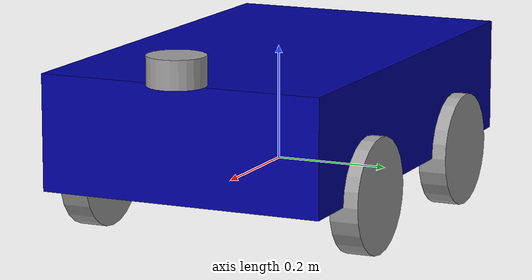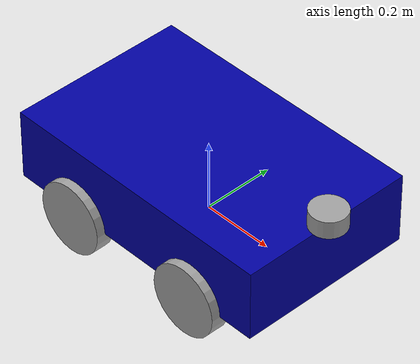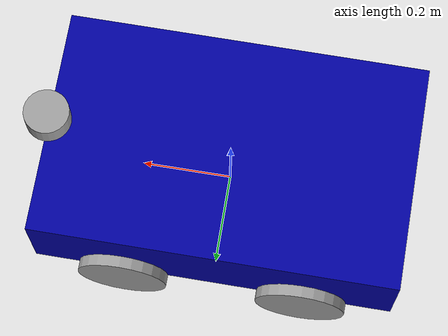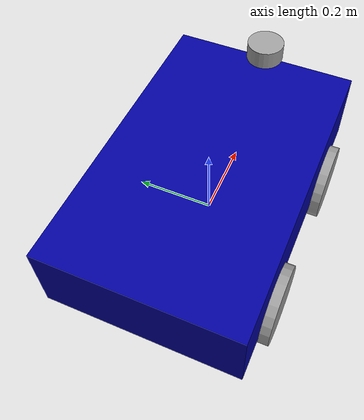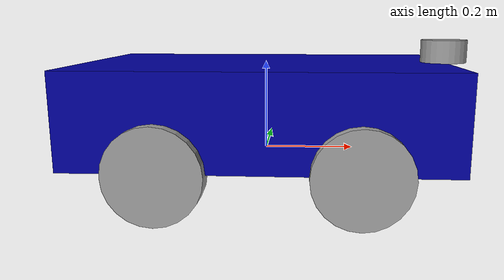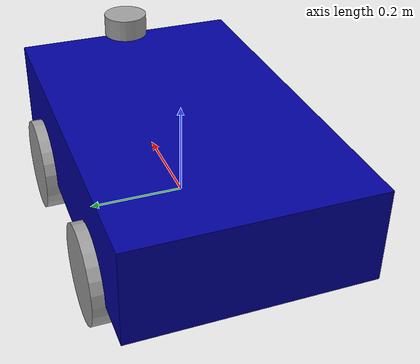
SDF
<sdf version='1.11'>
  <model name='my_robot'>
    <link name='base_link'>
      <inertial>
        <pose>0.066666666666666666 0 0.1333333333333333 0 0 0</pose>
        <mass>6</mass>
        <inertia>
          <ixx>0.16083333333333341</ixx>
          <ixy>0</ixy>
          <ixz>-0.066666666666666693</ixz>
          <iyy>0.45666666666666678</iyy>
          <iyz>0</iyz>
          <izz>0.51083333333333347</izz>
        </inertia>
      </inertial>
      <collision name='base_link_collision'>
        <pose>0 0 0.10000000000000001 0 0 0</pose>
        <geometry>
          <box>
            <size>0.80000000000000004 0.5 0.20000000000000001</size>
          </box>
        </geometry>
      </collision>
      <collision name='base_link_fixed_joint_lump__second_link_collision_1'>
        <pose>0.40000000000000002 0 0.29999999999999999 0 0 0</pose>
        <geometry>
          <box>
            <size>0.20000000000000001 0.20000000000000001 0.20000000000000001</size>
          </box>
        </geometry>
      </collision>
      <visual name='base_link_visual'>
        <pose>0 0 0.10000000000000001 0 0 0</pose>
        <geometry>
          <box>
            <size>0.80000000000000004 0.5 0.20000000000000001</size>
          </box>
        </geometry>
        <material>
          <diffuse>0 0 0.625 1</diffuse>
          <ambient>0 0 0.625 1</ambient>
        </material>
      </visual>
      <visual name='base_link_fixed_joint_lump__second_link_visual_1'>
        <pose>0.40000000000000002 0 0.22500000000000001 0 0 0</pose>
        <geometry>
          <cylinder>
            <length>0.050000000000000003</length>
            <radius>0.050000000000000003</radius>
          </cylinder>
        </geometry>
        <material>
          <diffuse>0.625 0.625 0.625 1</diffuse>
          <ambient>0.625 0.625 0.625 1</ambient>
        </material>
      </visual>
    </link>
    <joint name='base_left_front_wheel_joint' type='revolute'>
      <pose relative_to='base_link'>0.20000000000000001 0.25 0 0 0 0</pose>
      <parent>base_link</parent>
      <child>left_front_wheel_link</child>
      <axis>
        <xyz>0 1 0</xyz>
        <limit>
          <lower>-inf</lower>
          <upper>inf</upper>
        </limit>
        <dynamics>
          <spring_reference>0</spring_reference>
          <spring_stiffness>0</spring_stiffness>
        </dynamics>
      </axis>
    </joint>
    <link name='left_front_wheel_link'>
      <pose relative_to='base_left_front_wheel_joint'>0 0 0 0 0 0</pose>
      <inertial>
        <pose>0 0 0 1.5707963267948959 0 0</pose>
        <mass>1</mass>
        <inertia>
          <ixx>0.0027083333333333339</ixx>
          <ixy>0</ixy>
          <ixz>0</ixz>
          <iyy>0.0027083333333333339</iyy>
          <iyz>0</iyz>
          <izz>0.005000000000000001</izz>
        </inertia>
      </inertial>
      <collision name='left_front_wheel_link_collision'>
        <pose>0 0 0 0 0 0</pose>
        <geometry>
          <sphere>
            <radius>0.10000000000000001</radius>
          </sphere>
        </geometry>
      </collision>
      <visual name='left_front_wheel_link_visual'>
        <pose>0 0 0 1.5707963267948959 0 0</pose>
        <geometry>
          <cylinder>
            <length>0.050000000000000003</length>
            <radius>0.10000000000000001</radius>
          </cylinder>
        </geometry>
        <material>
          <diffuse>0.625 0.625 0.625 1</diffuse>
          <ambient>0.625 0.625 0.625 1</ambient>
        </material>
      </visual>
    </link>
    <joint name='base_left_rear_wheel_joint' type='revolute'>
      <pose relative_to='base_link'>-0.20000000000000001 0.25 0 0 0 0</pose>
      <parent>base_link</parent>
      <child>left_rear_wheel_link</child>
      <axis>
        <xyz>0 1 0</xyz>
        <limit>
          <lower>-inf</lower>
          <upper>inf</upper>
        </limit>
        <dynamics>
          <spring_reference>0</spring_reference>
          <spring_stiffness>0</spring_stiffness>
        </dynamics>
      </axis>
    </joint>
    <link name='left_rear_wheel_link'>
      <pose relative_to='base_left_rear_wheel_joint'>0 0 0 0 0 0</pose>
      <inertial>
        <pose>0 0 0 1.5707963267948959 0 0</pose>
        <mass>1</mass>
        <inertia>
          <ixx>0.0027083333333333339</ixx>
          <ixy>0</ixy>
          <ixz>0</ixz>
          <iyy>0.0027083333333333339</iyy>
          <iyz>0</iyz>
          <izz>0.005000000000000001</izz>
        </inertia>
      </inertial>
      <collision name='left_rear_wheel_link_collision'>
        <pose>0 0 0 0 0 0</pose>
        <geometry>
          <sphere>
            <radius>0.10000000000000001</radius>
          </sphere>
        </geometry>
      </collision>
      <visual name='left_rear_wheel_link_visual'>
        <pose>0 0 0 1.5707963267948959 0 0</pose>
        <geometry>
          <cylinder>
            <length>0.050000000000000003</length>
            <radius>0.10000000000000001</radius>
          </cylinder>
        </geometry>
        <material>
          <diffuse>0.625 0.625 0.625 1</diffuse>
          <ambient>0.625 0.625 0.625 1</ambient>
        </material>
      </visual>
    </link>
    <joint name='base_right_front_wheel_joint' type='revolute'>
      <pose relative_to='base_link'>0.20000000000000001 -0.25 0 0 0 0</pose>
      <parent>base_link</parent>
      <child>right_front_wheel_link</child>
      <axis>
        <xyz>0 1 0</xyz>
        <limit>
          <lower>-inf</lower>
          <upper>inf</upper>
        </limit>
        <dynamics>
          <spring_reference>0</spring_reference>
          <spring_stiffness>0</spring_stiffness>
        </dynamics>
      </axis>
    </joint>
    <link name='right_front_wheel_link'>
      <pose relative_to='base_right_front_wheel_joint'>0 0 0 0 0 0</pose>
      <inertial>
        <pose>0 0 0 1.5707963267948959 0 0</pose>
        <mass>1</mass>
        <inertia>
          <ixx>0.0027083333333333339</ixx>
          <ixy>0</ixy>
          <ixz>0</ixz>
          <iyy>0.0027083333333333339</iyy>
          <iyz>0</iyz>
          <izz>0.005000000000000001</izz>
        </inertia>
      </inertial>
      <collision name='right_front_wheel_link_collision'>
        <pose>0 0 0 0 0 0</pose>
        <geometry>
          <sphere>
            <radius>0.10000000000000001</radius>
          </sphere>
        </geometry>
      </collision>
      <visual name='right_front_wheel_link_visual'>
        <pose>0 0 0 1.5707963267948959 0 0</pose>
        <geometry>
          <cylinder>
            <length>0.050000000000000003</length>
            <radius>0.10000000000000001</radius>
          </cylinder>
        </geometry>
        <material>
          <diffuse>0.625 0.625 0.625 1</diffuse>
          <ambient>0.625 0.625 0.625 1</ambient>
        </material>
      </visual>
    </link>
    <joint name='base_right_rear_wheel_joint' type='revolute'>
      <pose relative_to='base_link'>-0.20000000000000001 -0.25 0 0 0 0</pose>
      <parent>base_link</parent>
      <child>right_rear_wheel_link</child>
      <axis>
        <xyz>0 1 0</xyz>
        <limit>
          <lower>-inf</lower>
          <upper>inf</upper>
        </limit>
        <dynamics>
          <spring_reference>0</spring_reference>
          <spring_stiffness>0</spring_stiffness>
        </dynamics>
      </axis>
    </joint>
    <link name='right_rear_wheel_link'>
      <pose relative_to='base_right_rear_wheel_joint'>0 0 0 0 0 0</pose>
      <inertial>
        <pose>0 0 0 1.5707963267948959 0 0</pose>
        <mass>1</mass>
        <inertia>
          <ixx>0.0027083333333333339</ixx>
          <ixy>0</ixy>
          <ixz>0</ixz>
          <iyy>0.0027083333333333339</iyy>
          <iyz>0</iyz>
          <izz>0.005000000000000001</izz>
        </inertia>
      </inertial>
      <collision name='right_rear_wheel_link_collision'>
        <pose>0 0 0 0 0 0</pose>
        <geometry>
          <sphere>
            <radius>0.10000000000000001</radius>
          </sphere>
        </geometry>
      </collision>
      <visual name='right_rear_wheel_link_visual'>
        <pose>0 0 0 1.5707963267948959 0 0</pose>
        <geometry>
          <cylinder>
            <length>0.050000000000000003</length>
            <radius>0.10000000000000001</radius>
          </cylinder>
        </geometry>
        <material>
          <diffuse>0.625 0.625 0.625 1</diffuse>
          <ambient>0.625 0.625 0.625 1</ambient>
        </material>
      </visual>
    </link>
    <joint name='base_third_joint' type='prismatic'>
      <pose relative_to='base_link'>0 0 0 0 0 0</pose>
      <parent>base_link</parent>
      <child>third_link</child>
      <axis>
        <xyz>0 0 1</xyz>
        <limit>
          <lower>0</lower>
          <upper>0.20000000000000001</upper>
          <effort>150</effort>
          <velocity>0.40000000000000002</velocity>
        </limit>
        <dynamics>
          <damping>5</damping>
          <friction>0</friction>
          <spring_reference>0</spring_reference>
          <spring_stiffness>0</spring_stiffness>
        </dynamics>
      </axis>
    </joint>
    <link name='third_link'>
      <pose relative_to='base_third_joint'>0 0 0 0 0 0</pose>
      <inertial>
        <pose>0 0 0.050000000000000003 0 0 0</pose>
        <mass>1</mass>
        <inertia>
          <ixx>0.001666666666666667</ixx>
          <ixy>0</ixy>
          <ixz>0</ixz>
          <iyy>0.001666666666666667</iyy>
          <iyz>0</iyz>
          <izz>0.001666666666666667</izz>
        </inertia>
      </inertial>
      <collision name='third_link_collision'>
        <pose>0 0 0.050000000000000003 0 0 0</pose>
        <geometry>
          <box>
            <size>0.10000000000000001 0.10000000000000001 0.10000000000000001</size>
          </box>
        </geometry>
      </collision>
      <visual name='third_link_visual'>
        <pose>0 0 0.050000000000000003 0 0 0</pose>
        <geometry>
          <box>
            <size>0.5 0.20000000000000001 -0.099999999999999978</size>
          </box>
        </geometry>
        <material>
          <diffuse>0.625 0.625 0.625 1</diffuse>
          <ambient>0.625 0.625 0.625 1</ambient>
        </material>
      </visual>
    </link>
    <plugin name='gz::sim::systems::DiffDrive' filename='gz-sim-diff-drive-system'>
      <left_joint>base_left_front_wheel_joint</left_joint>
      <left_joint>base_left_rear_wheel_joint</left_joint>
      <right_joint>base_right_front_wheel_joint</right_joint>
      <right_joint>base_right_rear_wheel_joint</right_joint>
      <wheel_separation>0.45</wheel_separation>
      <wheel_radius>0.1</wheel_radius>
      <frame_id>odom</frame_id>
      <child_frame_id>base_footprint</child_frame_id>
    </plugin>
    <plugin name='gz::sim::systems::JointStatePublisher' filename='gz-sim-joint-state-publisher-system'>
      <joint_name>base_left_rear_wheel_joint</joint_name>
      <joint_name>base_right_rear_wheel_joint</joint_name>
      <joint_name>base_left_front_wheel_joint</joint_name>
      <joint_name>base_right_front_wheel_joint</joint_name>
      <joint_name>base_third_joint</joint_name>
    </plugin>
    <plugin name='gz::sim::systems::JointPositionController' filename='gz-sim-joint-position-controller-system'>
      <joint_name>base_third_joint</joint_name>
      <topic>/lift/cmd_pos</topic>
      <p_gain>200</p_gain>
      <i_gain>0.0</i_gain>
      <d_gain>10.0</d_gain>
      <cmd_max>200</cmd_max>
      <cmd_min>-200</cmd_min>
    </plugin>
    <frame name='base_second_joint' attached_to='base_link'>
      <pose>0.40000000000000002 0 0.20000000000000001 0 0 0</pose>
    </frame>
    <frame name='second_link' attached_to='base_second_joint'>
      <pose>0 0 0 0 0 0</pose>
    </frame>
  </model>
</sdf>
